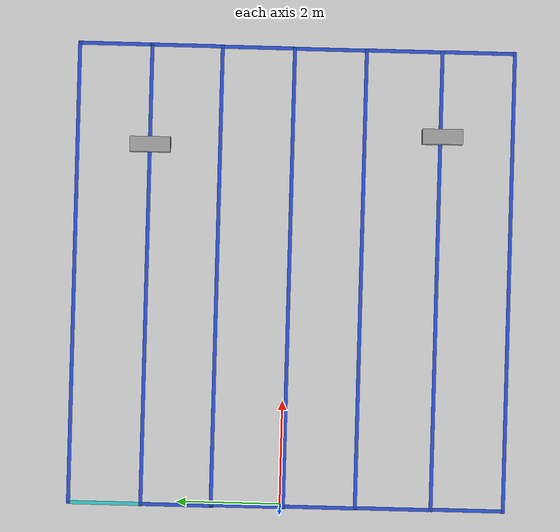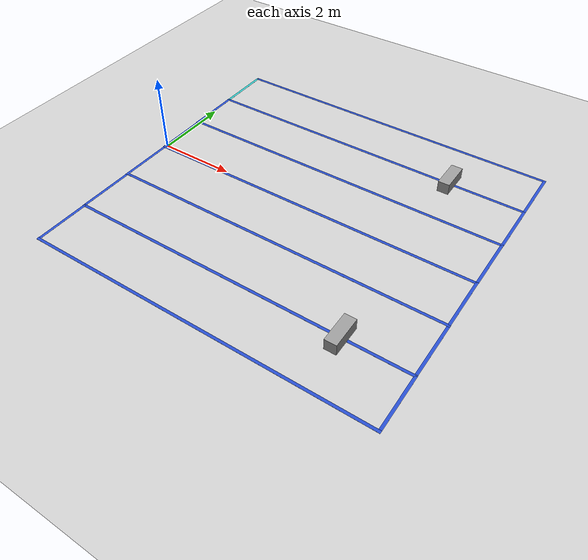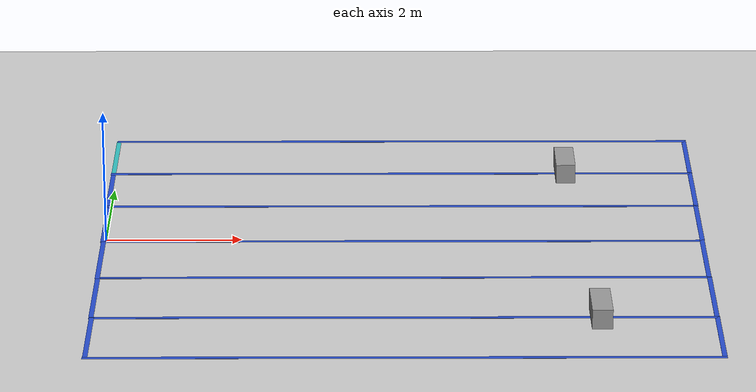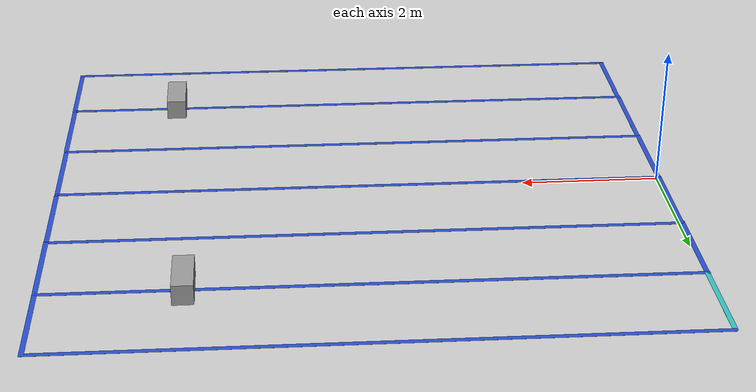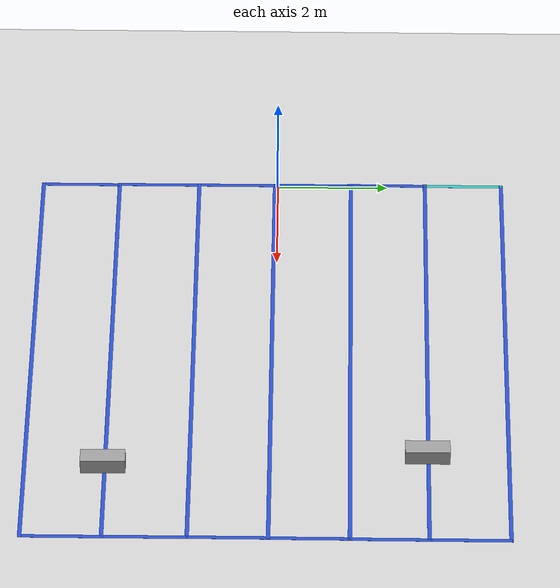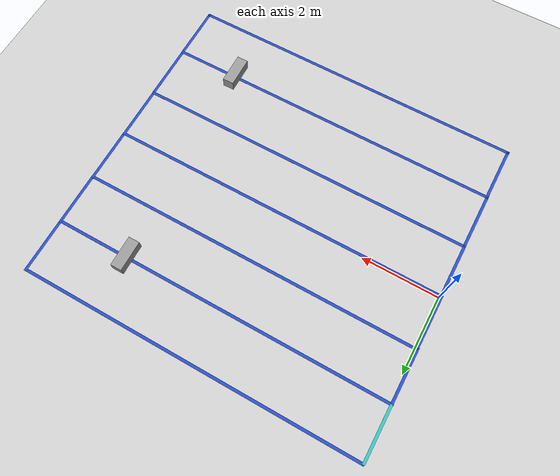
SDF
<sdf version="1.7">
 <world name="default">
  <model name="ground_plane">
   <static>1</static>
   <link name="link">
    <collision name="collision">
     <geometry><plane><normal>0 0 1</normal><size>100 100</size></plane></geometry>
     <surface>
      <contact><collide_bitmask>65535</collide_bitmask></contact>
      <friction><ode><mu>100</mu><mu2>50</mu2></ode></friction>
     </surface>
    </collision>
    <visual name="visual">
     <cast_shadows>0</cast_shadows>
     <geometry><plane><normal>0 0 1</normal><size>100 100</size></plane></geometry>
     <material>
      <script><uri>file://media/materials/scripts/gazebo.material</uri><name>Gazebo/Grey</name></script>
     </material>
    </visual>
   </link>
  </model>
  <model name="cizgi">
   <pose>4.20591 -0.108119 0 0 -0 0</pose>
   <link name="Wall_21">
    <collision name="Wall_21_Collision">
     <geometry><box><size>8.92 0.07 0.001</size></box></geometry>
     <pose>0 0 0.0005 0 -0 0</pose>
    </collision>
    <visual name="Wall_21_Visual">
     <pose>0 0 0.0005 0 -0 0</pose>
     <geometry><box><size>8.92 0.07 0.001</size></box></geometry>
     <material>
      <script><uri>file://media/materials/scripts/gazebo.material</uri><name>Gazebo/Blue</name></script>
      <ambient>1 1 1 1</ambient>
     </material>
     <meta><layer>0</layer></meta>
    </visual>
    <pose>0.1685 0.049 0 0 -0 0</pose>
   </link>
   <link name="Wall_23">
    <collision name="Wall_23_Collision">
     <geometry><box><size>1.42 0.07 0.001</size></box></geometry>
     <pose>0 0 0.0005 0 -0 0</pose>
    </collision>
    <visual name="Wall_23_Visual">
     <pose>0 0 0.0005 0 -0 0</pose>
     <geometry><box><size>1.42 0.07 0.001</size></box></geometry>
     <material>
      <script><uri>file://media/materials/scripts/gazebo.material</uri><name>Gazebo/Blue</name></script>
      <ambient>1 1 1 1</ambient>
     </material>
     <meta><layer>0</layer></meta>
    </visual>
    <pose>4.6125 2.135 0 0 -0 1.5708</pose>
   </link>
   <link name="Wall_25">
    <collision name="Wall_25_Collision">
     <geometry><box><size>1.42 0.07 0.001</size></box></geometry>
     <pose>0 0 0.0005 0 -0 0</pose>
    </collision>
    <visual name="Wall_25_Visual">
     <pose>0 0 0.0005 0 -0 0</pose>
     <geometry><box><size>1.42 0.07 0.001</size></box></geometry>
     <material>
      <script><uri>file://media/materials/scripts/gazebo.material</uri><name>Gazebo/Blue</name></script>
      <ambient>1 1 1 1</ambient>
     </material>
     <meta><layer>0</layer></meta>
    </visual>
    <pose>4.60833 -2.05702 0 0 -0 -1.5708</pose>
   </link>
   <link name="Wall_27">
    <collision name="Wall_27_Collision">
     <geometry><box><size>1.42 0.07 0.001</size></box></geometry>
     <pose>0 0 0.0005 0 -0 0</pose>
    </collision>
    <visual name="Wall_27_Visual">
     <pose>0 0 0.0005 0 -0 0</pose>
     <geometry><box><size>1.42 0.07 0.001</size></box></geometry>
     <material>
      <script><uri>file://media/materials/scripts/gazebo.material</uri><name>Gazebo/Blue</name></script>
      <ambient>1 1 1 1</ambient>
     </material>
     <meta><layer>0</layer></meta>
    </visual>
    <pose>4.61233 -3.50883 0 0 -0 -1.5708</pose>
   </link>
   <link name="Wall_29">
    <collision name="Wall_29_Collision">
     <geometry><box><size>1.42 0.07 0.001</size></box></geometry>
     <pose>0 0 0.0005 0 -0 0</pose>
    </collision>
    <visual name="Wall_29_Visual">
     <pose>0 0 0.0005 0 -0 0</pose>
     <geometry><box><size>1.42 0.07 0.001</size></box></geometry>
     <material>
      <script><uri>file://media/materials/scripts/gazebo.material</uri><name>Gazebo/Blue</name></script>
      <ambient>1 1 1 1</ambient>
     </material>
     <meta><layer>0</layer></meta>
    </visual>
    <pose>4.6125 3.527 0 0 -0 -1.5708</pose>
   </link>
   <link name="Wall_31">
    <collision name="Wall_31_Collision">
     <geometry><box><size>1.42 0.07 0.001</size></box></geometry>
     <pose>0 0 0.0005 0 -0 0</pose>
    </collision>
    <visual name="Wall_31_Visual">
     <pose>0 0 0.0005 0 -0 0</pose>
     <geometry><box><size>1.42 0.07 0.001</size></box></geometry>
     <material>
      <script><uri>file://media/materials/scripts/gazebo.material</uri><name>Gazebo/Blue</name></script>
      <ambient>1 1 1 1</ambient>
     </material>
     <meta><layer>0</layer></meta>
    </visual>
    <pose>4.6075 0.77 0 0 -0 -1.5708</pose>
   </link>
   <link name="Wall_33">
    <collision name="Wall_33_Collision">
     <geometry><box><size>1.42 0.07 0.001</size></box></geometry>
     <pose>0 0 0.0005 0 -0 0</pose>
    </collision>
    <visual name="Wall_33_Visual">
     <pose>0 0 0.0005 0 -0 0</pose>
     <geometry><box><size>1.42 0.07 0.001</size></box></geometry>
     <material>
      <script><uri>file://media/materials/scripts/gazebo.material</uri><name>Gazebo/Blue</name></script>
      <ambient>1 1 1 1</ambient>
     </material>
     <meta><layer>0</layer></meta>
    </visual>
    <pose>4.6035 -0.621 0 0 -0 -1.5708</pose>
   </link>
   <link name="Wall_35">
    <collision name="Wall_35_Collision">
     <geometry><box><size>8.92 0.07 0.001</size></box></geometry>
     <pose>0 0 0.0005 0 -0 0</pose>
    </collision>
    <visual name="Wall_35_Visual">
     <pose>0 0 0.0005 0 -0 0</pose>
     <geometry><box><size>8.92 0.07 0.001</size></box></geometry>
     <material>
      <script><uri>file://media/materials/scripts/gazebo.material</uri><name>Gazebo/Blue</name></script>
      <ambient>1 1 1 1</ambient>
     </material>
     <meta><layer>0</layer></meta>
    </visual>
    <pose>0.1775 1.445 0 0 -0 0</pose>
   </link>
   <link name="Wall_37">
    <collision name="Wall_37_Collision">
     <geometry><box><size>8.92 0.07 0.001</size></box></geometry>
     <pose>0 0 0.0005 0 -0 0</pose>
    </collision>
    <visual name="Wall_37_Visual">
     <pose>0 0 0.0005 0 -0 0</pose>
     <geometry><box><size>8.92 0.07 0.001</size></box></geometry>
     <material>
      <script><uri>file://media/materials/scripts/gazebo.material</uri><name>Gazebo/Blue</name></script>
      <ambient>1 1 1 1</ambient>
     </material>
     <meta><layer>0</layer></meta>
    </visual>
    <pose>0.1805 -1.341 0 0 -0 0</pose>
   </link>
   <link name="Wall_39">
    <collision name="Wall_39_Collision">
     <geometry><box><size>8.92 0.07 0.001</size></box></geometry>
     <pose>0 0 0.0005 0 -0 0</pose>
    </collision>
    <visual name="Wall_39_Visual">
     <pose>0 0 0.0005 0 -0 0</pose>
     <geometry><box><size>8.92 0.07 0.001</size></box></geometry>
     <material>
      <script><uri>file://media/materials/scripts/gazebo.material</uri><name>Gazebo/Blue</name></script>
      <ambient>1 1 1 1</ambient>
     </material>
     <meta><layer>0</layer></meta>
    </visual>
    <pose>0.187168 -2.80422 0 0 -0 0</pose>
   </link>
   <link name="Wall_41">
    <collision name="Wall_41_Collision">
     <geometry><box><size>8.92 0.07 0.001</size></box></geometry>
     <pose>0 0 0.0005 0 -0 0</pose>
    </collision>
    <visual name="Wall_41_Visual">
     <pose>0 0 0.0005 0 -0 0</pose>
     <geometry><box><size>8.92 0.07 0.001</size></box></geometry>
     <material>
      <script><uri>file://media/materials/scripts/gazebo.material</uri><name>Gazebo/Blue</name></script>
      <ambient>1 1 1 1</ambient>
     </material>
     <meta><layer>0</layer></meta>
    </visual>
    <pose>0.1875 -4.202 0 0 -0 0</pose>
   </link>
   <link name="Wall_43">
    <collision name="Wall_43_Collision">
     <geometry><box><size>8.92 0.07 0.001</size></box></geometry>
     <pose>0 0 0.0005 0 -0 0</pose>
    </collision>
    <visual name="Wall_43_Visual">
     <pose>0 0 0.0005 0 -0 0</pose>
     <geometry><box><size>8.92 0.07 0.001</size></box></geometry>
     <material>
      <script><uri>file://media/materials/scripts/gazebo.material</uri><name>Gazebo/Blue</name></script>
      <ambient>1 1 1 1</ambient>
     </material>
     <meta><layer>0</layer></meta>
    </visual>
    <pose>0.1715 4.202 0 0 -0 0</pose>
   </link>
   <link name="Wall_45">
    <collision name="Wall_45_Collision">
     <geometry><box><size>8.92 0.07 0.001</size></box></geometry>
     <pose>0 0 0.0005 0 -0 0</pose>
    </collision>
    <visual name="Wall_45_Visual">
     <pose>0 0 0.0005 0 -0 0</pose>
     <geometry><box><size>8.92 0.07 0.001</size></box></geometry>
     <material>
      <script><uri>file://media/materials/scripts/gazebo.material</uri><name>Gazebo/Blue</name></script>
      <ambient>1 1 1 1</ambient>
     </material>
     <meta><layer>0</layer></meta>
    </visual>
    <pose>0.1505 2.804 0 0 -0 0</pose>
   </link>
   <link name="Wall_47">
    <collision name="Wall_47_Collision">
     <geometry><box><size>1.42 0.07 0.001</size></box></geometry>
     <pose>0 0 0.0005 0 -0 0</pose>
    </collision>
    <visual name="Wall_47_Visual">
     <pose>0 0 0.0005 0 -0 0</pose>
     <geometry><box><size>1.42 0.07 0.001</size></box></geometry>
     <material>
      <script><uri>file://media/materials/scripts/gazebo.material</uri><name>Gazebo/Blue</name></script>
      <ambient>1 1 1 1</ambient>
     </material>
     <meta><layer>0</layer></meta>
    </visual>
    <pose>-4.23105 -3.508 0 0 -0 1.5708</pose>
   </link>
   <link name="Wall_49">
    <collision name="Wall_49_Collision">
     <geometry><box><size>1.42 0.07 0.001</size></box></geometry>
     <pose>0 0 0.0005 0 -0 0</pose>
    </collision>
    <visual name="Wall_49_Visual">
     <pose>0 0 0.0005 0 -0 0</pose>
     <geometry><box><size>1.42 0.07 0.001</size></box></geometry>
     <material>
      <script><uri>file://media/materials/scripts/gazebo.material</uri><name>Gazebo/Blue</name></script>
      <ambient>1 1 1 1</ambient>
     </material>
     <meta><layer>0</layer></meta>
    </visual>
    <pose>-4.23971 -2.0589 0 0 -0 1.5708</pose>
   </link>
   <link name="Wall_51">
    <collision name="Wall_51_Collision">
     <geometry><box><size>1.42 0.07 0.001</size></box></geometry>
     <pose>0 0 0.0005 0 -0 0</pose>
    </collision>
    <visual name="Wall_51_Visual">
     <pose>0 0 0.0005 0 -0 0</pose>
     <geometry><box><size>1.42 0.07 0.001</size></box></geometry>
     <material>
      <script><uri>file://media/materials/scripts/gazebo.material</uri><name>Gazebo/Blue</name></script>
      <ambient>1 1 1 1</ambient>
     </material>
     <meta><layer>0</layer></meta>
    </visual>
    <pose>-4.2455 -0.659 0 0 -0 1.5708</pose>
   </link>
   <link name="Wall_53">
    <collision name="Wall_53_Collision">
     <geometry><box><size>1.42 0.07 0.001</size></box></geometry>
     <pose>0 0 0.0005 0 -0 0</pose>
    </collision>
    <visual name="Wall_53_Visual">
     <pose>0 0 0.0005 0 -0 0</pose>
     <geometry><box><size>1.42 0.07 0.001</size></box></geometry>
     <material>
      <script><uri>file://media/materials/scripts/gazebo.material</uri><name>Gazebo/Blue</name></script>
      <ambient>1 1 1 1</ambient>
     </material>
     <meta><layer>0</layer></meta>
    </visual>
    <pose>-4.2565 0.749 0 0 -0 1.5708</pose>
   </link>
   <link name="Wall_55">
    <collision name="Wall_55_Collision">
     <geometry><box><size>1.42031 0.07 0.001</size></box></geometry>
     <pose>0 0 0.0005 0 -0 0</pose>
    </collision>
    <visual name="Wall_55_Visual">
     <pose>0 0 0.0005 0 -0 0</pose>
     <geometry><box><size>1.42031 0.07 0.001</size></box></geometry>
     <material>
      <script><uri>file://media/materials/scripts/gazebo.material</uri><name>Gazebo/Blue</name></script>
      <ambient>1 1 1 1</ambient>
     </material>
     <meta><layer>0</layer></meta>
    </visual>
    <pose>-4.2685 2.097 0 0 -0 1.5708</pose>
   </link>
   <link name="Wall_57">
    <collision name="Wall_57_Collision">
     <geometry><box><size>1.42 0.07 0.001</size></box></geometry>
     <pose>0 0 0.0005 0 -0 0</pose>
    </collision>
    <visual name="Wall_57_Visual">
     <pose>0 0 0.0005 0 -0 0</pose>
     <geometry><box><size>1.42 0.07 0.001</size></box></geometry>
     <material>
      <script><uri>file://media/materials/scripts/gazebo.material</uri><name>Gazebo/Turquoise</name></script>
      <ambient>1 1 1 1</ambient>
     </material>
     <meta><layer>0</layer></meta>
    </visual>
    <pose>-4.2675 3.505 0 0 -0 1.5708</pose>
   </link>
   <static>1</static>
  </model>
  <model name="engel_0">
   <link name="link_0">
    <inertial>
     <mass>0.0664996</mass>
     <inertia>
      <ixx>0.00384233</ixx>
      <ixy>0</ixy>
      <ixz>0</ixz>
      <iyy>0.000944879</iyy>
      <iyz>0</iyz>
      <izz>0.00384725</izz>
     </inertia>
    </inertial>
    <pose>3e-06 -4e-06 0 0 -0 0</pose>
    <visual name="visual">
     <geometry><box><size>0.29274 0.780095 0.29122</size></box></geometry>
     <material>
      <lighting>1</lighting>
      <script><uri>file://media/materials/scripts/gazebo.material</uri><name>Gazebo/Grey</name></script>
      <shader type="pixel"/>
     </material>
    </visual>
    <collision name="collision">
     <geometry><box><size>0.29274 0.780095 0.29122</size></box></geometry>
     <surface>
      <friction>
       <ode><mu>1</mu><mu2>1</mu2><fdir1>0 0 0</fdir1><slip1>0</slip1><slip2>0</slip2></ode>
       <torsional>
        <coefficient>1</coefficient>
        <patch_radius>0</patch_radius>
        <surface_radius>0</surface_radius>
        <use_patch_radius>1</use_patch_radius>
        <ode><slip>0</slip></ode>
       </torsional>
      </friction>
      <bounce><restitution_coefficient>0</restitution_coefficient><threshold>1e+06</threshold></bounce>
      <contact>
       <collide_without_contact>0</collide_without_contact>
       <collide_without_contact_bitmask>1</collide_without_contact_bitmask>
       <collide_bitmask>1</collide_bitmask>
       <ode>
        <soft_cfm>0</soft_cfm>
        <soft_erp>0.2</soft_erp>
        <kp>1e+13</kp>
        <kd>1</kd>
        <max_vel>0.01</max_vel>
        <min_depth>0</min_depth>
       </ode>
       <bullet>
        <split_impulse>1</split_impulse>
        <split_impulse_penetration_threshold>-0.01</split_impulse_penetration_threshold>
        <soft_cfm>0</soft_cfm>
        <soft_erp>0.2</soft_erp>
        <kp>1e+13</kp>
        <kd>1</kd>
       </bullet>
      </contact>
     </surface>
    </collision>
   </link>
   <static>0</static>
   <pose>6.88278 2.67869 0.146609 8e-05 -1.8e-05 0.006821</pose>
  </model>
  <model name="engel_1">
   <link name="link_0">
    <inertial>
     <mass>0.0664996</mass>
     <inertia>
      <ixx>0.00384233</ixx>
      <ixy>0</ixy>
      <ixz>0</ixz>
      <iyy>0.000944879</iyy>
      <iyz>0</iyz>
      <izz>0.00384725</izz>
     </inertia>
    </inertial>
    <pose>3e-06 -4e-06 0 0 -0 0</pose>
    <visual name="visual">
     <geometry><box><size>0.29274 0.780095 0.29122</size></box></geometry>
     <material>
      <lighting>1</lighting>
      <script><uri>file://media/materials/scripts/gazebo.material</uri><name>Gazebo/Grey</name></script>
      <shader type="pixel"/>
     </material>
    </visual>
    <collision name="collision">
     <geometry><box><size>0.29274 0.780095 0.29122</size></box></geometry>
     <surface>
      <friction>
       <ode><mu>1</mu><mu2>1</mu2><fdir1>0 0 0</fdir1><slip1>0</slip1><slip2>0</slip2></ode>
       <torsional>
        <coefficient>1</coefficient>
        <patch_radius>0</patch_radius>
        <surface_radius>0</surface_radius>
        <use_patch_radius>1</use_patch_radius>
        <ode><slip>0</slip></ode>
       </torsional>
      </friction>
      <bounce><restitution_coefficient>0</restitution_coefficient><threshold>1e+06</threshold></bounce>
      <contact>
       <collide_without_contact>0</collide_without_contact>
       <collide_without_contact_bitmask>1</collide_without_contact_bitmask>
       <collide_bitmask>1</collide_bitmask>
       <ode>
        <soft_cfm>0</soft_cfm>
        <soft_erp>0.2</soft_erp>
        <kp>1e+13</kp>
        <kd>1</kd>
        <max_vel>0.01</max_vel>
        <min_depth>0</min_depth>
       </ode>
       <bullet>
        <split_impulse>1</split_impulse>
        <split_impulse_penetration_threshold>-0.01</split_impulse_penetration_threshold>
        <soft_cfm>0</soft_cfm>
        <soft_erp>0.2</soft_erp>
        <kp>1e+13</kp>
        <kd>1</kd>
       </bullet>
      </contact>
     </surface>
    </collision>
   </link>
   <static>0</static>
   <pose>7.16998 -2.94299 0.146608 0.001026 9e-06 0.011165</pose>
  </model>
 </world>
</sdf>
